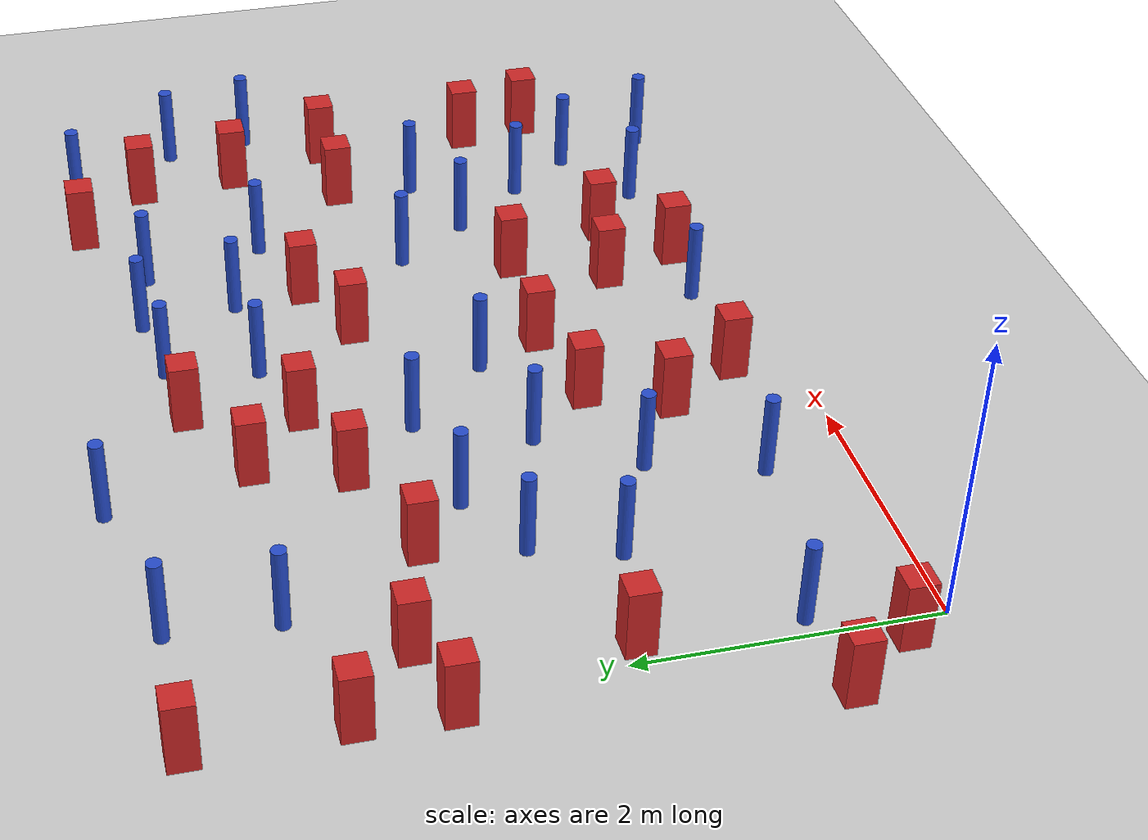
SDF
<sdf version="1.6">
 <world name="default">
  <model name="ground_plane">
   <static>1</static>
   <link name="link">
    <collision name="collision">
     <geometry><plane><normal>0 0 1</normal><size>100 100</size></plane></geometry>
     <surface><friction><ode><mu>100</mu><mu2>50</mu2></ode></friction></surface>
    </collision>
    <visual name="visual">
     <cast_shadows>0</cast_shadows>
     <geometry><plane><normal>0 0 1</normal><size>100 100</size></plane></geometry>
     <material>
      <ambient>1.0 1.0 1.0 1.0</ambient>
      <diffuse>0.8 0.8 0.8 1.0</diffuse>
      <specular>0.01 0.01 0.01 1.000000</specular>
     </material>
    </visual>
   </link>
  </model>
  <model name="pole_obstacle4">
   <static>true</static>
   <pose>4.62775568484 4.29187557403 -9.47619616065e-06 5.49618799737e-07 2.36310414037e-07 -1.55090534814e-07</pose>
   <link name="link">
    <pose>0 0 0.3 0 -0 0</pose>
    <inertial>
     <mass>1</mass>
     <inertia><ixx>0.145833</ixx><ixy>0</ixy><ixz>0</ixz><iyy>0.145833</iyy><iyz>0</iyz><izz>0.125</izz></inertia>
    </inertial>
    <collision name="collision">
     <geometry><cylinder><radius>0.05</radius><length>.6</length></cylinder></geometry>
    </collision>
    <visual name="visual">
     <geometry><cylinder><radius>0.05</radius><length>.6</length></cylinder></geometry>
     <material>
      <script><name>Gazebo/Blue</name><uri>file://media/materials/scripts/gazebo.material</uri></script>
     </material>
    </visual>
   </link>
  </model>
  <model name="square_post_obstacle8">
   <static>true</static>
   <pose>4.19859094494 1.65276408117 -6.11067671241e-07 -5.50515727128e-06 -8.79689657224e-07 2.37013304536e-05</pose>
   <link name="link">
    <pose>0 0 0.25 0 -0 0</pose>
    <inertial>
     <mass>100</mass>
     <inertia>
      <ixx>0.166667</ixx>
      <ixy>0</ixy>
      <ixz>0</ixz>
      <iyy>0.166667</iyy>
      <iyz>0</iyz>
      <izz>0.166667</izz>
     </inertia>
    </inertial>
    <collision name="collision"><geometry><box><size>.2 .2 .5</size></box></geometry></collision>
    <visual name="visual">
     <geometry><box><size>.2 .2 .5</size></box></geometry>
     <material>
      <script><name>Gazebo/Red</name><uri>file://media/materials/scripts/gazebo.material</uri></script>
     </material>
    </visual>
   </link>
  </model>
  <model name="square_post_obstacle11">
   <static>true</static>
   <pose>2.23731947832 3.88143096257 -6.11067671241e-07 -5.50515727128e-06 -8.79689657224e-07 2.37013304536e-05</pose>
   <link name="link">
    <pose>0 0 0.25 0 -0 0</pose>
    <inertial>
     <mass>100</mass>
     <inertia>
      <ixx>0.166667</ixx>
      <ixy>0</ixy>
      <ixz>0</ixz>
      <iyy>0.166667</iyy>
      <iyz>0</iyz>
      <izz>0.166667</izz>
     </inertia>
    </inertial>
    <collision name="collision"><geometry><box><size>.2 .2 .5</size></box></geometry></collision>
    <visual name="visual">
     <geometry><box><size>.2 .2 .5</size></box></geometry>
     <material>
      <script><name>Gazebo/Red</name><uri>file://media/materials/scripts/gazebo.material</uri></script>
     </material>
    </visual>
   </link>
  </model>
  <model name="square_post_obstacle15">
   <static>true</static>
   <pose>2.31770672173 1.00862189128 -6.11067671241e-07 -5.50515727128e-06 -8.79689657224e-07 2.37013304536e-05</pose>
   <link name="link">
    <pose>0 0 0.25 0 -0 0</pose>
    <inertial>
     <mass>100</mass>
     <inertia>
      <ixx>0.166667</ixx>
      <ixy>0</ixy>
      <ixz>0</ixz>
      <iyy>0.166667</iyy>
      <iyz>0</iyz>
      <izz>0.166667</izz>
     </inertia>
    </inertial>
    <collision name="collision"><geometry><box><size>.2 .2 .5</size></box></geometry></collision>
    <visual name="visual">
     <geometry><box><size>.2 .2 .5</size></box></geometry>
     <material>
      <script><name>Gazebo/Red</name><uri>file://media/materials/scripts/gazebo.material</uri></script>
     </material>
    </visual>
   </link>
  </model>
  <model name="pole_obstacle14">
   <static>true</static>
   <pose>0.844035217358 4.63608528235 -9.47619616065e-06 5.49618799737e-07 2.36310414065e-07 -1.55090534796e-07</pose>
   <link name="link">
    <pose>0 0 0.3 0 -0 0</pose>
    <inertial>
     <mass>1</mass>
     <inertia><ixx>0.145833</ixx><ixy>0</ixy><ixz>0</ixz><iyy>0.145833</iyy><iyz>0</iyz><izz>0.125</izz></inertia>
    </inertial>
    <collision name="collision">
     <geometry><cylinder><radius>0.05</radius><length>.6</length></cylinder></geometry>
    </collision>
    <visual name="visual">
     <geometry><cylinder><radius>0.05</radius><length>.6</length></cylinder></geometry>
     <material>
      <script><name>Gazebo/Blue</name><uri>file://media/materials/scripts/gazebo.material</uri></script>
     </material>
    </visual>
   </link>
  </model>
  <model name="pole_obstacle16">
   <static>true</static>
   <pose>2.49517732059 2.75788152116 -9.47619616065e-06 5.49618799737e-07 2.36310414051e-07 -1.55090534807e-07</pose>
   <link name="link">
    <pose>0 0 0.3 0 -0 0</pose>
    <inertial>
     <mass>1</mass>
     <inertia><ixx>0.145833</ixx><ixy>0</ixy><ixz>0</ixz><iyy>0.145833</iyy><iyz>0</iyz><izz>0.125</izz></inertia>
    </inertial>
    <collision name="collision">
     <geometry><cylinder><radius>0.05</radius><length>.6</length></cylinder></geometry>
    </collision>
    <visual name="visual">
     <geometry><cylinder><radius>0.05</radius><length>.6</length></cylinder></geometry>
     <material>
      <script><name>Gazebo/Blue</name><uri>file://media/materials/scripts/gazebo.material</uri></script>
     </material>
    </visual>
   </link>
  </model>
  <model name="pole_obstacle17">
   <static>true</static>
   <pose>3.05157790193 2.16062593882 -9.47619616065e-06 5.49618799737e-07 2.36310414051e-07 -1.55090534807e-07</pose>
   <link name="link">
    <pose>0 0 0.3 0 -0 0</pose>
    <inertial>
     <mass>1</mass>
     <inertia><ixx>0.145833</ixx><ixy>0</ixy><ixz>0</ixz><iyy>0.145833</iyy><iyz>0</iyz><izz>0.125</izz></inertia>
    </inertial>
    <collision name="collision">
     <geometry><cylinder><radius>0.05</radius><length>.6</length></cylinder></geometry>
    </collision>
    <visual name="visual">
     <geometry><cylinder><radius>0.05</radius><length>.6</length></cylinder></geometry>
     <material>
      <script><name>Gazebo/Blue</name><uri>file://media/materials/scripts/gazebo.material</uri></script>
     </material>
    </visual>
   </link>
  </model>
  <model name="pole_obstacle25">
   <static>true</static>
   <pose>4.14486784 3.71313369703 -9.47619616065e-06 5.49618799738e-07 2.36310414051e-07 -1.55090534805e-07</pose>
   <link name="link">
    <pose>0 0 0.3 0 -0 0</pose>
    <inertial>
     <mass>1</mass>
     <inertia><ixx>0.145833</ixx><ixy>0</ixy><ixz>0</ixz><iyy>0.145833</iyy><iyz>0</iyz><izz>0.125</izz></inertia>
    </inertial>
    <collision name="collision">
     <geometry><cylinder><radius>0.05</radius><length>.6</length></cylinder></geometry>
    </collision>
    <visual name="visual">
     <geometry><cylinder><radius>0.05</radius><length>.6</length></cylinder></geometry>
     <material>
      <script><name>Gazebo/Blue</name><uri>file://media/materials/scripts/gazebo.material</uri></script>
     </material>
    </visual>
   </link>
  </model>
  <model name="square_post_obstacle32">
   <static>true</static>
   <pose>4.09990776798 0.440065965416 -6.11067671241e-07 -5.50515727128e-06 -8.79689657224e-07 2.37013304536e-05</pose>
   <link name="link">
    <pose>0 0 0.25 0 -0 0</pose>
    <inertial>
     <mass>100</mass>
     <inertia>
      <ixx>0.166667</ixx>
      <ixy>0</ixy>
      <ixz>0</ixz>
      <iyy>0.166667</iyy>
      <iyz>0</iyz>
      <izz>0.166667</izz>
     </inertia>
    </inertial>
    <collision name="collision"><geometry><box><size>.2 .2 .5</size></box></geometry></collision>
    <visual name="visual">
     <geometry><box><size>.2 .2 .5</size></box></geometry>
     <material>
      <script><name>Gazebo/Red</name><uri>file://media/materials/scripts/gazebo.material</uri></script>
     </material>
    </visual>
   </link>
  </model>
  <model name="pole_obstacle43">
   <static>true</static>
   <pose>2.02739803463 4.86255139687 -9.47619616065e-06 5.49618799737e-07 2.36310414059e-07 -1.55090534802e-07</pose>
   <link name="link">
    <pose>0 0 0.3 0 -0 0</pose>
    <inertial>
     <mass>1</mass>
     <inertia><ixx>0.145833</ixx><ixy>0</ixy><ixz>0</ixz><iyy>0.145833</iyy><iyz>0</iyz><izz>0.125</izz></inertia>
    </inertial>
    <collision name="collision">
     <geometry><cylinder><radius>0.05</radius><length>.6</length></cylinder></geometry>
    </collision>
    <visual name="visual">
     <geometry><cylinder><radius>0.05</radius><length>.6</length></cylinder></geometry>
     <material>
      <script><name>Gazebo/Blue</name><uri>file://media/materials/scripts/gazebo.material</uri></script>
     </material>
    </visual>
   </link>
  </model>
  <model name="square_post_obstacle41">
   <static>true</static>
   <pose>-0.148711366356 4.63834260651 -6.11067671241e-07 -5.50515727128e-06 -8.79689657224e-07 2.37013304536e-05</pose>
   <link name="link">
    <pose>0 0 0.25 0 -0 0</pose>
    <inertial>
     <mass>100</mass>
     <inertia>
      <ixx>0.166667</ixx>
      <ixy>0</ixy>
      <ixz>0</ixz>
      <iyy>0.166667</iyy>
      <iyz>0</iyz>
      <izz>0.166667</izz>
     </inertia>
    </inertial>
    <collision name="collision"><geometry><box><size>.2 .2 .5</size></box></geometry></collision>
    <visual name="visual">
     <geometry><box><size>.2 .2 .5</size></box></geometry>
     <material>
      <script><name>Gazebo/Red</name><uri>file://media/materials/scripts/gazebo.material</uri></script>
     </material>
    </visual>
   </link>
  </model>
  <model name="square_post_obstacle47">
   <static>true</static>
   <pose>1.23878879041 2.9793591641 -6.11067671241e-07 -5.50515727128e-06 -8.79689657224e-07 2.37013304536e-05</pose>
   <link name="link">
    <pose>0 0 0.25 0 -0 0</pose>
    <inertial>
     <mass>100</mass>
     <inertia>
      <ixx>0.166667</ixx>
      <ixy>0</ixy>
      <ixz>0</ixz>
      <iyy>0.166667</iyy>
      <iyz>0</iyz>
      <izz>0.166667</izz>
     </inertia>
    </inertial>
    <collision name="collision"><geometry><box><size>.2 .2 .5</size></box></geometry></collision>
    <visual name="visual">
     <geometry><box><size>.2 .2 .5</size></box></geometry>
     <material>
      <script><name>Gazebo/Red</name><uri>file://media/materials/scripts/gazebo.material</uri></script>
     </material>
    </visual>
   </link>
  </model>
  <model name="pole_obstacle48">
   <static>true</static>
   <pose>5.77711679747 0.209393299795 -9.47619616065e-06 5.49618799737e-07 2.36310414071e-07 -1.55090534796e-07</pose>
   <link name="link">
    <pose>0 0 0.3 0 -0 0</pose>
    <inertial>
     <mass>1</mass>
     <inertia><ixx>0.145833</ixx><ixy>0</ixy><ixz>0</ixz><iyy>0.145833</iyy><iyz>0</iyz><izz>0.125</izz></inertia>
    </inertial>
    <collision name="collision">
     <geometry><cylinder><radius>0.05</radius><length>.6</length></cylinder></geometry>
    </collision>
    <visual name="visual">
     <geometry><cylinder><radius>0.05</radius><length>.6</length></cylinder></geometry>
     <material>
      <script><name>Gazebo/Blue</name><uri>file://media/materials/scripts/gazebo.material</uri></script>
     </material>
    </visual>
   </link>
  </model>
  <model name="pole_obstacle51">
   <static>true</static>
   <pose>6.35694617224 3.91466239644 -9.47619616065e-06 5.49618799738e-07 2.36310414051e-07 -1.55090534805e-07</pose>
   <link name="link">
    <pose>0 0 0.3 0 -0 0</pose>
    <inertial>
     <mass>1</mass>
     <inertia><ixx>0.145833</ixx><ixy>0</ixy><ixz>0</ixz><iyy>0.145833</iyy><iyz>0</iyz><izz>0.125</izz></inertia>
    </inertial>
    <collision name="collision">
     <geometry><cylinder><radius>0.05</radius><length>.6</length></cylinder></geometry>
    </collision>
    <visual name="visual">
     <geometry><cylinder><radius>0.05</radius><length>.6</length></cylinder></geometry>
     <material>
      <script><name>Gazebo/Blue</name><uri>file://media/materials/scripts/gazebo.material</uri></script>
     </material>
    </visual>
   </link>
  </model>
  <model name="pole_obstacle52">
   <static>true</static>
   <pose>4.99333140895 0.495778436572 -9.47619616065e-06 5.49618799737e-07 2.3631041407e-07 -1.55090534796e-07</pose>
   <link name="link">
    <pose>0 0 0.3 0 -0 0</pose>
    <inertial>
     <mass>1</mass>
     <inertia><ixx>0.145833</ixx><ixy>0</ixy><ixz>0</ixz><iyy>0.145833</iyy><iyz>0</iyz><izz>0.125</izz></inertia>
    </inertial>
    <collision name="collision">
     <geometry><cylinder><radius>0.05</radius><length>.6</length></cylinder></geometry>
    </collision>
    <visual name="visual">
     <geometry><cylinder><radius>0.05</radius><length>.6</length></cylinder></geometry>
     <material>
      <script><name>Gazebo/Blue</name><uri>file://media/materials/scripts/gazebo.material</uri></script>
     </material>
    </visual>
   </link>
  </model>
  <model name="square_post_obstacle56">
   <static>true</static>
   <pose>5.8193762342 4.19149322253 -6.11067671241e-07 -5.50515727128e-06 -8.79689657224e-07 2.37013304536e-05</pose>
   <link name="link">
    <pose>0 0 0.25 0 -0 0</pose>
    <inertial>
     <mass>100</mass>
     <inertia>
      <ixx>0.166667</ixx>
      <ixy>0</ixy>
      <ixz>0</ixz>
      <iyy>0.166667</iyy>
      <iyz>0</iyz>
      <izz>0.166667</izz>
     </inertia>
    </inertial>
    <collision name="collision"><geometry><box><size>.2 .2 .5</size></box></geometry></collision>
    <visual name="visual">
     <geometry><box><size>.2 .2 .5</size></box></geometry>
     <material>
      <script><name>Gazebo/Red</name><uri>file://media/materials/scripts/gazebo.material</uri></script>
     </material>
    </visual>
   </link>
  </model>
  <model name="square_post_obstacle60">
   <static>true</static>
   <pose>0.150932122422 1.90676097047 -6.11067671241e-07 -5.50515727128e-06 -8.79689657224e-07 2.37013304536e-05</pose>
   <link name="link">
    <pose>0 0 0.25 0 -0 0</pose>
    <inertial>
     <mass>100</mass>
     <inertia>
      <ixx>0.166667</ixx>
      <ixy>0</ixy>
      <ixz>0</ixz>
      <iyy>0.166667</iyy>
      <iyz>0</iyz>
      <izz>0.166667</izz>
     </inertia>
    </inertial>
    <collision name="collision"><geometry><box><size>.2 .2 .5</size></box></geometry></collision>
    <visual name="visual">
     <geometry><box><size>.2 .2 .5</size></box></geometry>
     <material>
      <script><name>Gazebo/Red</name><uri>file://media/materials/scripts/gazebo.material</uri></script>
     </material>
    </visual>
   </link>
  </model>
  <model name="pole_obstacle59">
   <static>true</static>
   <pose>1.7549464301 1.3667859953 -9.47619616065e-06 5.49618799737e-07 2.36310414065e-07 -1.55090534798e-07</pose>
   <link name="link">
    <pose>0 0 0.3 0 -0 0</pose>
    <inertial>
     <mass>1</mass>
     <inertia><ixx>0.145833</ixx><ixy>0</ixy><ixz>0</ixz><iyy>0.145833</iyy><iyz>0</iyz><izz>0.125</izz></inertia>
    </inertial>
    <collision name="collision">
     <geometry><cylinder><radius>0.05</radius><length>.6</length></cylinder></geometry>
    </collision>
    <visual name="visual">
     <geometry><cylinder><radius>0.05</radius><length>.6</length></cylinder></geometry>
     <material>
      <script><name>Gazebo/Blue</name><uri>file://media/materials/scripts/gazebo.material</uri></script>
     </material>
    </visual>
   </link>
  </model>
  <model name="square_post_obstacle64">
   <static>true</static>
   <pose>5.27608241 4.69511315045 -6.11067671241e-07 -5.50515727128e-06 -8.79689657224e-07 2.37013304536e-05</pose>
   <link name="link">
    <pose>0 0 0.25 0 -0 0</pose>
    <inertial>
     <mass>100</mass>
     <inertia>
      <ixx>0.166667</ixx>
      <ixy>0</ixy>
      <ixz>0</ixz>
      <iyy>0.166667</iyy>
      <iyz>0</iyz>
      <izz>0.166667</izz>
     </inertia>
    </inertial>
    <collision name="collision"><geometry><box><size>.2 .2 .5</size></box></geometry></collision>
    <visual name="visual">
     <geometry><box><size>.2 .2 .5</size></box></geometry>
     <material>
      <script><name>Gazebo/Red</name><uri>file://media/materials/scripts/gazebo.material</uri></script>
     </material>
    </visual>
   </link>
  </model>
  <model name="square_post_obstacle69">
   <static>true</static>
   <pose>-0.15063500184 0.313680885759 -6.11067671241e-07 -5.50515727128e-06 -8.79689657224e-07 2.37013304536e-05</pose>
   <link name="link">
    <pose>0 0 0.25 0 -0 0</pose>
    <inertial>
     <mass>100</mass>
     <inertia>
      <ixx>0.166667</ixx>
      <ixy>0</ixy>
      <ixz>0</ixz>
      <iyy>0.166667</iyy>
      <iyz>0</iyz>
      <izz>0.166667</izz>
     </inertia>
    </inertial>
    <collision name="collision"><geometry><box><size>.2 .2 .5</size></box></geometry></collision>
    <visual name="visual">
     <geometry><box><size>.2 .2 .5</size></box></geometry>
     <material>
      <script><name>Gazebo/Red</name><uri>file://media/materials/scripts/gazebo.material</uri></script>
     </material>
    </visual>
   </link>
  </model>
  <model name="pole_obstacle71">
   <static>true</static>
   <pose>4.86670659733 3.43018910862 -9.47619616065e-06 5.49618799738e-07 2.36310414051e-07 -1.55090534805e-07</pose>
   <link name="link">
    <pose>0 0 0.3 0 -0 0</pose>
    <inertial>
     <mass>1</mass>
     <inertia><ixx>0.145833</ixx><ixy>0</ixy><ixz>0</ixz><iyy>0.145833</iyy><iyz>0</iyz><izz>0.125</izz></inertia>
    </inertial>
    <collision name="collision">
     <geometry><cylinder><radius>0.05</radius><length>.6</length></cylinder></geometry>
    </collision>
    <visual name="visual">
     <geometry><cylinder><radius>0.05</radius><length>.6</length></cylinder></geometry>
     <material>
      <script><name>Gazebo/Blue</name><uri>file://media/materials/scripts/gazebo.material</uri></script>
     </material>
    </visual>
   </link>
  </model>
  <model name="pole_obstacle72">
   <static>true</static>
   <pose>3.3254220179 3.66474982854 -9.47619616065e-06 5.49618799737e-07 2.36310414051e-07 -1.55090534807e-07</pose>
   <link name="link">
    <pose>0 0 0.3 0 -0 0</pose>
    <inertial>
     <mass>1</mass>
     <inertia><ixx>0.145833</ixx><ixy>0</ixy><ixz>0</ixz><iyy>0.145833</iyy><iyz>0</iyz><izz>0.125</izz></inertia>
    </inertial>
    <collision name="collision">
     <geometry><cylinder><radius>0.05</radius><length>.6</length></cylinder></geometry>
    </collision>
    <visual name="visual">
     <geometry><cylinder><radius>0.05</radius><length>.6</length></cylinder></geometry>
     <material>
      <script><name>Gazebo/Blue</name><uri>file://media/materials/scripts/gazebo.material</uri></script>
     </material>
    </visual>
   </link>
  </model>
  <model name="pole_obstacle73">
   <static>true</static>
   <pose>5.25853751277 1.34850365656 -9.47619616065e-06 5.49618799738e-07 2.36310414071e-07 -1.55090534796e-07</pose>
   <link name="link">
    <pose>0 0 0.3 0 -0 0</pose>
    <inertial>
     <mass>1</mass>
     <inertia><ixx>0.145833</ixx><ixy>0</ixy><ixz>0</ixz><iyy>0.145833</iyy><iyz>0</iyz><izz>0.125</izz></inertia>
    </inertial>
    <collision name="collision">
     <geometry><cylinder><radius>0.05</radius><length>.6</length></cylinder></geometry>
    </collision>
    <visual name="visual">
     <geometry><cylinder><radius>0.05</radius><length>.6</length></cylinder></geometry>
     <material>
      <script><name>Gazebo/Blue</name><uri>file://media/materials/scripts/gazebo.material</uri></script>
     </material>
    </visual>
   </link>
  </model>
  <model name="pole_obstacle81">
   <static>true</static>
   <pose>0.13820562089 0.855779574994 -9.47619616065e-06 5.49618799737e-07 2.36310414056e-07 -1.55090534802e-07</pose>
   <link name="link">
    <pose>0 0 0.3 0 -0 0</pose>
    <inertial>
     <mass>1</mass>
     <inertia><ixx>0.145833</ixx><ixy>0</ixy><ixz>0</ixz><iyy>0.145833</iyy><iyz>0</iyz><izz>0.125</izz></inertia>
    </inertial>
    <collision name="collision">
     <geometry><cylinder><radius>0.05</radius><length>.6</length></cylinder></geometry>
    </collision>
    <visual name="visual">
     <geometry><cylinder><radius>0.05</radius><length>.6</length></cylinder></geometry>
     <material>
      <script><name>Gazebo/Blue</name><uri>file://media/materials/scripts/gazebo.material</uri></script>
     </material>
    </visual>
   </link>
  </model>
  <model name="square_post_obstacle80">
   <static>true</static>
   <pose>0.383492056522 3.21656449299 -6.11067671241e-07 -5.50515727128e-06 -8.79689657224e-07 2.37013304536e-05</pose>
   <link name="link">
    <pose>0 0 0.25 0 -0 0</pose>
    <inertial>
     <mass>100</mass>
     <inertia>
      <ixx>0.166667</ixx>
      <ixy>0</ixy>
      <ixz>0</ixz>
      <iyy>0.166667</iyy>
      <iyz>0</iyz>
      <izz>0.166667</izz>
     </inertia>
    </inertial>
    <collision name="collision"><geometry><box><size>.2 .2 .5</size></box></geometry></collision>
    <visual name="visual">
     <geometry><box><size>.2 .2 .5</size></box></geometry>
     <material>
      <script><name>Gazebo/Red</name><uri>file://media/materials/scripts/gazebo.material</uri></script>
     </material>
    </visual>
   </link>
  </model>
  <model name="pole_obstacle88">
   <static>true</static>
   <pose>2.17738938858 2.00697575122 -9.47619616065e-06 5.49618799737e-07 2.36310414066e-07 -1.55090534797e-07</pose>
   <link name="link">
    <pose>0 0 0.3 0 -0 0</pose>
    <inertial>
     <mass>1</mass>
     <inertia><ixx>0.145833</ixx><ixy>0</ixy><ixz>0</ixz><iyy>0.145833</iyy><iyz>0</iyz><izz>0.125</izz></inertia>
    </inertial>
    <collision name="collision">
     <geometry><cylinder><radius>0.05</radius><length>.6</length></cylinder></geometry>
    </collision>
    <visual name="visual">
     <geometry><cylinder><radius>0.05</radius><length>.6</length></cylinder></geometry>
     <material>
      <script><name>Gazebo/Blue</name><uri>file://media/materials/scripts/gazebo.material</uri></script>
     </material>
    </visual>
   </link>
  </model>
  <model name="square_post_obstacle86">
   <static>true</static>
   <pose>3.63655204751 2.95054062377 -6.11067671241e-07 -5.50515727128e-06 -8.79689657224e-07 2.37013304536e-05</pose>
   <link name="link">
    <pose>0 0 0.25 0 -0 0</pose>
    <inertial>
     <mass>100</mass>
     <inertia>
      <ixx>0.166667</ixx>
      <ixy>0</ixy>
      <ixz>0</ixz>
      <iyy>0.166667</iyy>
      <iyz>0</iyz>
      <izz>0.166667</izz>
     </inertia>
    </inertial>
    <collision name="collision"><geometry><box><size>.2 .2 .5</size></box></geometry></collision>
    <visual name="visual">
     <geometry><box><size>.2 .2 .5</size></box></geometry>
     <material>
      <script><name>Gazebo/Red</name><uri>file://media/materials/scripts/gazebo.material</uri></script>
     </material>
    </visual>
   </link>
  </model>
  <model name="square_post_obstacle90">
   <static>true</static>
   <pose>2.73435144883 3.47195759722 -6.11067671241e-07 -5.50515727128e-06 -8.79689657224e-07 2.37013304536e-05</pose>
   <link name="link">
    <pose>0 0 0.25 0 -0 0</pose>
    <inertial>
     <mass>100</mass>
     <inertia>
      <ixx>0.166667</ixx>
      <ixy>0</ixy>
      <ixz>0</ixz>
      <iyy>0.166667</iyy>
      <iyz>0</iyz>
      <izz>0.166667</izz>
     </inertia>
    </inertial>
    <collision name="collision"><geometry><box><size>.2 .2 .5</size></box></geometry></collision>
    <visual name="visual">
     <geometry><box><size>.2 .2 .5</size></box></geometry>
     <material>
      <script><name>Gazebo/Red</name><uri>file://media/materials/scripts/gazebo.material</uri></script>
     </material>
    </visual>
   </link>
  </model>
  <model name="pole_obstacle103">
   <static>true</static>
   <pose>1.52652084643 0.608670219012 -9.47619616065e-06 5.49618799737e-07 2.36310414065e-07 -1.55090534798e-07</pose>
   <link name="link">
    <pose>0 0 0.3 0 -0 0</pose>
    <inertial>
     <mass>1</mass>
     <inertia><ixx>0.145833</ixx><ixy>0</ixy><ixz>0</ixz><iyy>0.145833</iyy><iyz>0</iyz><izz>0.125</izz></inertia>
    </inertial>
    <collision name="collision">
     <geometry><cylinder><radius>0.05</radius><length>.6</length></cylinder></geometry>
    </collision>
    <visual name="visual">
     <geometry><cylinder><radius>0.05</radius><length>.6</length></cylinder></geometry>
     <material>
      <script><name>Gazebo/Blue</name><uri>file://media/materials/scripts/gazebo.material</uri></script>
     </material>
    </visual>
   </link>
  </model>
  <model name="pole_obstacle104">
   <static>true</static>
   <pose>4.4719066308 2.41214393356 -9.47619616065e-06 5.49618799738e-07 2.36310414051e-07 -1.55090534805e-07</pose>
   <link name="link">
    <pose>0 0 0.3 0 -0 0</pose>
    <inertial>
     <mass>1</mass>
     <inertia><ixx>0.145833</ixx><ixy>0</ixy><ixz>0</ixz><iyy>0.145833</iyy><iyz>0</iyz><izz>0.125</izz></inertia>
    </inertial>
    <collision name="collision">
     <geometry><cylinder><radius>0.05</radius><length>.6</length></cylinder></geometry>
    </collision>
    <visual name="visual">
     <geometry><cylinder><radius>0.05</radius><length>.6</length></cylinder></geometry>
     <material>
      <script><name>Gazebo/Blue</name><uri>file://media/materials/scripts/gazebo.material</uri></script>
     </material>
    </visual>
   </link>
  </model>
  <model name="pole_obstacle105">
   <static>true</static>
   <pose>1.1149823817 2.3239281978 -9.47619616065e-06 5.49618799737e-07 2.36310414062e-07 -1.55090534798e-07</pose>
   <link name="link">
    <pose>0 0 0.3 0 -0 0</pose>
    <inertial>
     <mass>1</mass>
     <inertia><ixx>0.145833</ixx><ixy>0</ixy><ixz>0</ixz><iyy>0.145833</iyy><iyz>0</iyz><izz>0.125</izz></inertia>
    </inertial>
    <collision name="collision">
     <geometry><cylinder><radius>0.05</radius><length>.6</length></cylinder></geometry>
    </collision>
    <visual name="visual">
     <geometry><cylinder><radius>0.05</radius><length>.6</length></cylinder></geometry>
     <material>
      <script><name>Gazebo/Blue</name><uri>file://media/materials/scripts/gazebo.material</uri></script>
     </material>
    </visual>
   </link>
  </model>
  <model name="pole_obstacle109">
   <static>true</static>
   <pose>0.794015784797 3.91469647924 -9.47619616065e-06 5.49618799737e-07 2.36310414066e-07 -1.55090534797e-07</pose>
   <link name="link">
    <pose>0 0 0.3 0 -0 0</pose>
    <inertial>
     <mass>1</mass>
     <inertia><ixx>0.145833</ixx><ixy>0</ixy><ixz>0</ixz><iyy>0.145833</iyy><iyz>0</iyz><izz>0.125</izz></inertia>
    </inertial>
    <collision name="collision">
     <geometry><cylinder><radius>0.05</radius><length>.6</length></cylinder></geometry>
    </collision>
    <visual name="visual">
     <geometry><cylinder><radius>0.05</radius><length>.6</length></cylinder></geometry>
     <material>
      <script><name>Gazebo/Blue</name><uri>file://media/materials/scripts/gazebo.material</uri></script>
     </material>
    </visual>
   </link>
  </model>
  <model name="square_post_obstacle99">
   <static>true</static>
   <pose>5.47287888353 2.72012172733 -6.11067671241e-07 -5.50515727128e-06 -8.79689657224e-07 2.37013304536e-05</pose>
   <link name="link">
    <pose>0 0 0.25 0 -0 0</pose>
    <inertial>
     <mass>100</mass>
     <inertia>
      <ixx>0.166667</ixx>
      <ixy>0</ixy>
      <ixz>0</ixz>
      <iyy>0.166667</iyy>
      <iyz>0</iyz>
      <izz>0.166667</izz>
     </inertia>
    </inertial>
    <collision name="collision"><geometry><box><size>.2 .2 .5</size></box></geometry></collision>
    <visual name="visual">
     <geometry><box><size>.2 .2 .5</size></box></geometry>
     <material>
      <script><name>Gazebo/Red</name><uri>file://media/materials/scripts/gazebo.material</uri></script>
     </material>
    </visual>
   </link>
  </model>
  <model name="pole_obstacle113">
   <static>true</static>
   <pose>5.59803335623 0.881206316344 -9.47619616065e-06 5.49618799737e-07 2.36310414061e-07 -1.550905348e-07</pose>
   <link name="link">
    <pose>0 0 0.3 0 -0 0</pose>
    <inertial>
     <mass>1</mass>
     <inertia><ixx>0.145833</ixx><ixy>0</ixy><ixz>0</ixz><iyy>0.145833</iyy><iyz>0</iyz><izz>0.125</izz></inertia>
    </inertial>
    <collision name="collision">
     <geometry><cylinder><radius>0.05</radius><length>.6</length></cylinder></geometry>
    </collision>
    <visual name="visual">
     <geometry><cylinder><radius>0.05</radius><length>.6</length></cylinder></geometry>
     <material>
      <script><name>Gazebo/Blue</name><uri>file://media/materials/scripts/gazebo.material</uri></script>
     </material>
    </visual>
   </link>
  </model>
  <model name="pole_obstacle115">
   <static>true</static>
   <pose>5.4602749074 2.1421042139 -9.47619616065e-06 5.49618799738e-07 2.36310414051e-07 -1.55090534805e-07</pose>
   <link name="link">
    <pose>0 0 0.3 0 -0 0</pose>
    <inertial>
     <mass>1</mass>
     <inertia><ixx>0.145833</ixx><ixy>0</ixy><ixz>0</ixz><iyy>0.145833</iyy><iyz>0</iyz><izz>0.125</izz></inertia>
    </inertial>
    <collision name="collision">
     <geometry><cylinder><radius>0.05</radius><length>.6</length></cylinder></geometry>
    </collision>
    <visual name="visual">
     <geometry><cylinder><radius>0.05</radius><length>.6</length></cylinder></geometry>
     <material>
      <script><name>Gazebo/Blue</name><uri>file://media/materials/scripts/gazebo.material</uri></script>
     </material>
    </visual>
   </link>
  </model>
  <model name="pole_obstacle116">
   <static>true</static>
   <pose>4.83582316113 1.88464272059 -9.47619616065e-06 5.49618799738e-07 2.36310414071e-07 -1.55090534796e-07</pose>
   <link name="link">
    <pose>0 0 0.3 0 -0 0</pose>
    <inertial>
     <mass>1</mass>
     <inertia><ixx>0.145833</ixx><ixy>0</ixy><ixz>0</ixz><iyy>0.145833</iyy><iyz>0</iyz><izz>0.125</izz></inertia>
    </inertial>
    <collision name="collision">
     <geometry><cylinder><radius>0.05</radius><length>.6</length></cylinder></geometry>
    </collision>
    <visual name="visual">
     <geometry><cylinder><radius>0.05</radius><length>.6</length></cylinder></geometry>
     <material>
      <script><name>Gazebo/Blue</name><uri>file://media/materials/scripts/gazebo.material</uri></script>
     </material>
    </visual>
   </link>
  </model>
  <model name="square_post_obstacle109">
   <static>true</static>
   <pose>3.90613525892 0.999239501421 -6.11067671241e-07 -5.50515727128e-06 -8.79689657224e-07 2.37013304536e-05</pose>
   <link name="link">
    <pose>0 0 0.25 0 -0 0</pose>
    <inertial>
     <mass>100</mass>
     <inertia>
      <ixx>0.166667</ixx>
      <ixy>0</ixy>
      <ixz>0</ixz>
      <iyy>0.166667</iyy>
      <iyz>0</iyz>
      <izz>0.166667</izz>
     </inertia>
    </inertial>
    <collision name="collision"><geometry><box><size>.2 .2 .5</size></box></geometry></collision>
    <visual name="visual">
     <geometry><box><size>.2 .2 .5</size></box></geometry>
     <material>
      <script><name>Gazebo/Red</name><uri>file://media/materials/scripts/gazebo.material</uri></script>
     </material>
    </visual>
   </link>
  </model>
  <model name="square_post_obstacle116">
   <static>true</static>
   <pose>5.89592754781 3.47376296112 -6.11067671241e-07 -5.50515727128e-06 -8.79689657224e-07 2.37013304536e-05</pose>
   <link name="link">
    <pose>0 0 0.25 0 -0 0</pose>
    <inertial>
     <mass>100</mass>
     <inertia>
      <ixx>0.166667</ixx>
      <ixy>0</ixy>
      <ixz>0</ixz>
      <iyy>0.166667</iyy>
      <iyz>0</iyz>
      <izz>0.166667</izz>
     </inertia>
    </inertial>
    <collision name="collision"><geometry><box><size>.2 .2 .5</size></box></geometry></collision>
    <visual name="visual">
     <geometry><box><size>.2 .2 .5</size></box></geometry>
     <material>
      <script><name>Gazebo/Red</name><uri>file://media/materials/scripts/gazebo.material</uri></script>
     </material>
    </visual>
   </link>
  </model>
  <model name="square_post_obstacle120">
   <static>true</static>
   <pose>6.10375295821 1.58016055953 -6.11067671241e-07 -5.50515727128e-06 -8.79689657224e-07 2.37013304536e-05</pose>
   <link name="link">
    <pose>0 0 0.25 0 -0 0</pose>
    <inertial>
     <mass>100</mass>
     <inertia>
      <ixx>0.166667</ixx>
      <ixy>0</ixy>
      <ixz>0</ixz>
      <iyy>0.166667</iyy>
      <iyz>0</iyz>
      <izz>0.166667</izz>
     </inertia>
    </inertial>
    <collision name="collision"><geometry><box><size>.2 .2 .5</size></box></geometry></collision>
    <visual name="visual">
     <geometry><box><size>.2 .2 .5</size></box></geometry>
     <material>
      <script><name>Gazebo/Red</name><uri>file://media/materials/scripts/gazebo.material</uri></script>
     </material>
    </visual>
   </link>
  </model>
  <model name="square_post_obstacle121">
   <static>true</static>
   <pose>2.64094708083 0.479067992348 -6.11067671241e-07 -5.50515727128e-06 -8.79689657224e-07 2.37013304536e-05</pose>
   <link name="link">
    <pose>0 0 0.25 0 -0 0</pose>
    <inertial>
     <mass>100</mass>
     <inertia>
      <ixx>0.166667</ixx>
      <ixy>0</ixy>
      <ixz>0</ixz>
      <iyy>0.166667</iyy>
      <iyz>0</iyz>
      <izz>0.166667</izz>
     </inertia>
    </inertial>
    <collision name="collision"><geometry><box><size>.2 .2 .5</size></box></geometry></collision>
    <visual name="visual">
     <geometry><box><size>.2 .2 .5</size></box></geometry>
     <material>
      <script><name>Gazebo/Red</name><uri>file://media/materials/scripts/gazebo.material</uri></script>
     </material>
    </visual>
   </link>
  </model>
  <model name="square_post_obstacle127">
   <static>true</static>
   <pose>6.12014119802 2.73785455973 -6.11067671241e-07 -5.50515727128e-06 -8.79689657224e-07 2.37013304536e-05</pose>
   <link name="link">
    <pose>0 0 0.25 0 -0 0</pose>
    <inertial>
     <mass>100</mass>
     <inertia>
      <ixx>0.166667</ixx>
      <ixy>0</ixy>
      <ixz>0</ixz>
      <iyy>0.166667</iyy>
      <iyz>0</iyz>
      <izz>0.166667</izz>
     </inertia>
    </inertial>
    <collision name="collision"><geometry><box><size>.2 .2 .5</size></box></geometry></collision>
    <visual name="visual">
     <geometry><box><size>.2 .2 .5</size></box></geometry>
     <material>
      <script><name>Gazebo/Red</name><uri>file://media/materials/scripts/gazebo.material</uri></script>
     </material>
    </visual>
   </link>
  </model>
  <model name="square_post_obstacle138">
   <static>true</static>
   <pose>2.54735147786 1.55601716258 -6.11067671241e-07 -5.50515727128e-06 -8.79689657224e-07 2.37013304536e-05</pose>
   <link name="link">
    <pose>0 0 0.25 0 -0 0</pose>
    <inertial>
     <mass>100</mass>
     <inertia>
      <ixx>0.166667</ixx>
      <ixy>0</ixy>
      <ixz>0</ixz>
      <iyy>0.166667</iyy>
      <iyz>0</iyz>
      <izz>0.166667</izz>
     </inertia>
    </inertial>
    <collision name="collision"><geometry><box><size>.2 .2 .5</size></box></geometry></collision>
    <visual name="visual">
     <geometry><box><size>.2 .2 .5</size></box></geometry>
     <material>
      <script><name>Gazebo/Red</name><uri>file://media/materials/scripts/gazebo.material</uri></script>
     </material>
    </visual>
   </link>
  </model>
  <model name="pole_obstacle149">
   <static>true</static>
   <pose>6.46861034661 3.30353841619 -9.47619616065e-06 5.49618799738e-07 2.36310414051e-07 -1.55090534805e-07</pose>
   <link name="link">
    <pose>0 0 0.3 0 -0 0</pose>
    <inertial>
     <mass>1</mass>
     <inertia><ixx>0.145833</ixx><ixy>0</ixy><ixz>0</ixz><iyy>0.145833</iyy><iyz>0</iyz><izz>0.125</izz></inertia>
    </inertial>
    <collision name="collision">
     <geometry><cylinder><radius>0.05</radius><length>.6</length></cylinder></geometry>
    </collision>
    <visual name="visual">
     <geometry><cylinder><radius>0.05</radius><length>.6</length></cylinder></geometry>
     <material>
      <script><name>Gazebo/Blue</name><uri>file://media/materials/scripts/gazebo.material</uri></script>
     </material>
    </visual>
   </link>
  </model>
  <model name="pole_obstacle150">
   <static>true</static>
   <pose>5.90527530854 4.68594546051 -9.47619616065e-06 5.49618799737e-07 2.36310414037e-07 -1.55090534814e-07</pose>
   <link name="link">
    <pose>0 0 0.3 0 -0 0</pose>
    <inertial>
     <mass>1</mass>
     <inertia><ixx>0.145833</ixx><ixy>0</ixy><ixz>0</ixz><iyy>0.145833</iyy><iyz>0</iyz><izz>0.125</izz></inertia>
    </inertial>
    <collision name="collision">
     <geometry><cylinder><radius>0.05</radius><length>.6</length></cylinder></geometry>
    </collision>
    <visual name="visual">
     <geometry><cylinder><radius>0.05</radius><length>.6</length></cylinder></geometry>
     <material>
      <script><name>Gazebo/Blue</name><uri>file://media/materials/scripts/gazebo.material</uri></script>
     </material>
    </visual>
   </link>
  </model>
  <model name="pole_obstacle154">
   <static>true</static>
   <pose>4.04816863108 4.39174310457 -9.47619616065e-06 5.49618799737e-07 2.36310414037e-07 -1.55090534814e-07</pose>
   <link name="link">
    <pose>0 0 0.3 0 -0 0</pose>
    <inertial>
     <mass>1</mass>
     <inertia><ixx>0.145833</ixx><ixy>0</ixy><ixz>0</ixz><iyy>0.145833</iyy><iyz>0</iyz><izz>0.125</izz></inertia>
    </inertial>
    <collision name="collision">
     <geometry><cylinder><radius>0.05</radius><length>.6</length></cylinder></geometry>
    </collision>
    <visual name="visual">
     <geometry><cylinder><radius>0.05</radius><length>.6</length></cylinder></geometry>
     <material>
      <script><name>Gazebo/Blue</name><uri>file://media/materials/scripts/gazebo.material</uri></script>
     </material>
    </visual>
   </link>
  </model>
  <model name="pole_obstacle167">
   <static>true</static>
   <pose>3.45783225672 4.29947913947 -9.47619616065e-06 5.49618799738e-07 2.3631041406e-07 -1.55090534801e-07</pose>
   <link name="link">
    <pose>0 0 0.3 0 -0 0</pose>
    <inertial>
     <mass>1</mass>
     <inertia><ixx>0.145833</ixx><ixy>0</ixy><ixz>0</ixz><iyy>0.145833</iyy><iyz>0</iyz><izz>0.125</izz></inertia>
    </inertial>
    <collision name="collision">
     <geometry><cylinder><radius>0.05</radius><length>.6</length></cylinder></geometry>
    </collision>
    <visual name="visual">
     <geometry><cylinder><radius>0.05</radius><length>.6</length></cylinder></geometry>
     <material>
      <script><name>Gazebo/Blue</name><uri>file://media/materials/scripts/gazebo.material</uri></script>
     </material>
    </visual>
   </link>
  </model>
  <model name="pole_obstacle175">
   <static>true</static>
   <pose>0.944866105722 1.74751230289 -9.47619616065e-06 5.49618799738e-07 2.36310414061e-07 -1.55090534801e-07</pose>
   <link name="link">
    <pose>0 0 0.3 0 -0 0</pose>
    <inertial>
     <mass>1</mass>
     <inertia><ixx>0.145833</ixx><ixy>0</ixy><ixz>0</ixz><iyy>0.145833</iyy><iyz>0</iyz><izz>0.125</izz></inertia>
    </inertial>
    <collision name="collision">
     <geometry><cylinder><radius>0.05</radius><length>.6</length></cylinder></geometry>
    </collision>
    <visual name="visual">
     <geometry><cylinder><radius>0.05</radius><length>.6</length></cylinder></geometry>
     <material>
      <script><name>Gazebo/Blue</name><uri>file://media/materials/scripts/gazebo.material</uri></script>
     </material>
    </visual>
   </link>
  </model>
  <model name="square_post_obstacle168">
   <static>true</static>
   <pose>3.2556568127 1.70276589156 -6.11067671241e-07 -5.50515727128e-06 -8.79689657224e-07 2.37013304536e-05</pose>
   <link name="link">
    <pose>0 0 0.25 0 -0 0</pose>
    <inertial>
     <mass>100</mass>
     <inertia>
      <ixx>0.166667</ixx>
      <ixy>0</ixy>
      <ixz>0</ixz>
      <iyy>0.166667</iyy>
      <iyz>0</iyz>
      <izz>0.166667</izz>
     </inertia>
    </inertial>
    <collision name="collision"><geometry><box><size>.2 .2 .5</size></box></geometry></collision>
    <visual name="visual">
     <geometry><box><size>.2 .2 .5</size></box></geometry>
     <material>
      <script><name>Gazebo/Red</name><uri>file://media/materials/scripts/gazebo.material</uri></script>
     </material>
    </visual>
   </link>
  </model>
  <model name="square_post_obstacle169">
   <static>true</static>
   <pose>4.53544555896 0.882689936724 -6.11067671241e-07 -5.50515727128e-06 -8.79689657224e-07 2.37013304536e-05</pose>
   <link name="link">
    <pose>0 0 0.25 0 -0 0</pose>
    <inertial>
     <mass>100</mass>
     <inertia>
      <ixx>0.166667</ixx>
      <ixy>0</ixy>
      <ixz>0</ixz>
      <iyy>0.166667</iyy>
      <iyz>0</iyz>
      <izz>0.166667</izz>
     </inertia>
    </inertial>
    <collision name="collision"><geometry><box><size>.2 .2 .5</size></box></geometry></collision>
    <visual name="visual">
     <geometry><box><size>.2 .2 .5</size></box></geometry>
     <material>
      <script><name>Gazebo/Red</name><uri>file://media/materials/scripts/gazebo.material</uri></script>
     </material>
    </visual>
   </link>
  </model>
  <model name="square_post_obstacle170">
   <static>true</static>
   <pose>6.20068321019 1.06917109299 -6.11067671241e-07 -5.50515727128e-06 -8.79689657224e-07 2.37013304536e-05</pose>
   <link name="link">
    <pose>0 0 0.25 0 -0 0</pose>
    <inertial>
     <mass>100</mass>
     <inertia>
      <ixx>0.166667</ixx>
      <ixy>0</ixy>
      <ixz>0</ixz>
      <iyy>0.166667</iyy>
      <iyz>0</iyz>
      <izz>0.166667</izz>
     </inertia>
    </inertial>
    <collision name="collision"><geometry><box><size>.2 .2 .5</size></box></geometry></collision>
    <visual name="visual">
     <geometry><box><size>.2 .2 .5</size></box></geometry>
     <material>
      <script><name>Gazebo/Red</name><uri>file://media/materials/scripts/gazebo.material</uri></script>
     </material>
    </visual>
   </link>
  </model>
  <model name="pole_obstacle201">
   <static>true</static>
   <pose>3.56858603411 0.450066698101 -9.47619616065e-06 5.49618799737e-07 2.36310414078e-07 -1.55090534791e-07</pose>
   <link name="link">
    <pose>0 0 0.3 0 -0 0</pose>
    <inertial>
     <mass>1</mass>
     <inertia><ixx>0.145833</ixx><ixy>0</ixy><ixz>0</ixz><iyy>0.145833</iyy><iyz>0</iyz><izz>0.125</izz></inertia>
    </inertial>
    <collision name="collision">
     <geometry><cylinder><radius>0.05</radius><length>.6</length></cylinder></geometry>
    </collision>
    <visual name="visual">
     <geometry><cylinder><radius>0.05</radius><length>.6</length></cylinder></geometry>
     <material>
      <script><name>Gazebo/Blue</name><uri>file://media/materials/scripts/gazebo.material</uri></script>
     </material>
    </visual>
   </link>
  </model>
  <model name="pole_obstacle225">
   <static>true</static>
   <pose>1.64529300181 2.62549947172 -9.47619616065e-06 5.49618799737e-07 2.36310414062e-07 -1.55090534798e-07</pose>
   <link name="link">
    <pose>0 0 0.3 0 -0 0</pose>
    <inertial>
     <mass>1</mass>
     <inertia><ixx>0.145833</ixx><ixy>0</ixy><ixz>0</ixz><iyy>0.145833</iyy><iyz>0</iyz><izz>0.125</izz></inertia>
    </inertial>
    <collision name="collision">
     <geometry><cylinder><radius>0.05</radius><length>.6</length></cylinder></geometry>
    </collision>
    <visual name="visual">
     <geometry><cylinder><radius>0.05</radius><length>.6</length></cylinder></geometry>
     <material>
      <script><name>Gazebo/Blue</name><uri>file://media/materials/scripts/gazebo.material</uri></script>
     </material>
    </visual>
   </link>
  </model>
  <model name="square_post_obstacle203">
   <static>true</static>
   <pose>4.20011944778 3.207866649 -6.11067671241e-07 -5.50515727128e-06 -8.79689657224e-07 2.37013304536e-05</pose>
   <link name="link">
    <pose>0 0 0.25 0 -0 0</pose>
    <inertial>
     <mass>100</mass>
     <inertia>
      <ixx>0.166667</ixx>
      <ixy>0</ixy>
      <ixz>0</ixz>
      <iyy>0.166667</iyy>
      <iyz>0</iyz>
      <izz>0.166667</izz>
     </inertia>
    </inertial>
    <collision name="collision"><geometry><box><size>.2 .2 .5</size></box></geometry></collision>
    <visual name="visual">
     <geometry><box><size>.2 .2 .5</size></box></geometry>
     <material>
      <script><name>Gazebo/Red</name><uri>file://media/materials/scripts/gazebo.material</uri></script>
     </material>
    </visual>
   </link>
  </model>
  <model name="square_post_obstacle204">
   <static>true</static>
   <pose>-0.516336137913 0.796930054823 -6.11067671241e-07 -5.50515727128e-06 -8.79689657224e-07 2.37013304536e-05</pose>
   <link name="link">
    <pose>0 0 0.25 0 -0 0</pose>
    <inertial>
     <mass>100</mass>
     <inertia>
      <ixx>0.166667</ixx>
      <ixy>0</ixy>
      <ixz>0</ixz>
      <iyy>0.166667</iyy>
      <iyz>0</iyz>
      <izz>0.166667</izz>
     </inertia>
    </inertial>
    <collision name="collision"><geometry><box><size>.2 .2 .5</size></box></geometry></collision>
    <visual name="visual">
     <geometry><box><size>.2 .2 .5</size></box></geometry>
     <material>
      <script><name>Gazebo/Red</name><uri>file://media/materials/scripts/gazebo.material</uri></script>
     </material>
    </visual>
   </link>
  </model>
  <model name="square_post_obstacle206">
   <static>true</static>
   <pose>2.03872748147 3.2627417541 -6.11067671241e-07 -5.50515727128e-06 -8.79689657224e-07 2.37013304536e-05</pose>
   <link name="link">
    <pose>0 0 0.25 0 -0 0</pose>
    <inertial>
     <mass>100</mass>
     <inertia>
      <ixx>0.166667</ixx>
      <ixy>0</ixy>
      <ixz>0</ixz>
      <iyy>0.166667</iyy>
      <iyz>0</iyz>
      <izz>0.166667</izz>
     </inertia>
    </inertial>
    <collision name="collision"><geometry><box><size>.2 .2 .5</size></box></geometry></collision>
    <visual name="visual">
     <geometry><box><size>.2 .2 .5</size></box></geometry>
     <material>
      <script><name>Gazebo/Red</name><uri>file://media/materials/scripts/gazebo.material</uri></script>
     </material>
    </visual>
   </link>
  </model>
  <model name="square_post_obstacle221">
   <static>true</static>
   <pose>-0.165511545717 3.06340464 -6.11067671241e-07 -5.50515727128e-06 -8.79689657224e-07 2.37013304536e-05</pose>
   <link name="link">
    <pose>0 0 0.25 0 -0 0</pose>
    <inertial>
     <mass>100</mass>
     <inertia>
      <ixx>0.166667</ixx>
      <ixy>0</ixy>
      <ixz>0</ixz>
      <iyy>0.166667</iyy>
      <iyz>0</iyz>
      <izz>0.166667</izz>
     </inertia>
    </inertial>
    <collision name="collision"><geometry><box><size>.2 .2 .5</size></box></geometry></collision>
    <visual name="visual">
     <geometry><box><size>.2 .2 .5</size></box></geometry>
     <material>
      <script><name>Gazebo/Red</name><uri>file://media/materials/scripts/gazebo.material</uri></script>
     </material>
    </visual>
   </link>
  </model>
  <model name="square_post_obstacle223">
   <static>true</static>
   <pose>-0.143191049797 3.65671997688 -6.11067671241e-07 -5.50515727128e-06 -8.79689657224e-07 2.37013304536e-05</pose>
   <link name="link">
    <pose>0 0 0.25 0 -0 0</pose>
    <inertial>
     <mass>100</mass>
     <inertia>
      <ixx>0.166667</ixx>
      <ixy>0</ixy>
      <ixz>0</ixz>
      <iyy>0.166667</iyy>
      <iyz>0</iyz>
      <izz>0.166667</izz>
     </inertia>
    </inertial>
    <collision name="collision"><geometry><box><size>.2 .2 .5</size></box></geometry></collision>
    <visual name="visual">
     <geometry><box><size>.2 .2 .5</size></box></geometry>
     <material>
      <script><name>Gazebo/Red</name><uri>file://media/materials/scripts/gazebo.material</uri></script>
     </material>
    </visual>
   </link>
  </model>
  <model name="square_post_obstacle224">
   <static>true</static>
   <pose>2.9034499502 4.22489997688 -6.11067671241e-07 -5.50515727128e-06 -8.79689657224e-07 2.37013304536e-05</pose>
   <link name="link">
    <pose>0 0 0.25 0 -0 0</pose>
    <inertial>
     <mass>100</mass>
     <inertia>
      <ixx>0.166667</ixx>
      <ixy>0</ixy>
      <ixz>0</ixz>
      <iyy>0.166667</iyy>
      <iyz>0</iyz>
      <izz>0.166667</izz>
     </inertia>
    </inertial>
    <collision name="collision"><geometry><box><size>.2 .2 .5</size></box></geometry></collision>
    <visual name="visual">
     <geometry><box><size>.2 .2 .5</size></box></geometry>
     <material>
      <script><name>Gazebo/Red</name><uri>file://media/materials/scripts/gazebo.material</uri></script>
     </material>
    </visual>
   </link>
  </model>
 </world>
</sdf>
